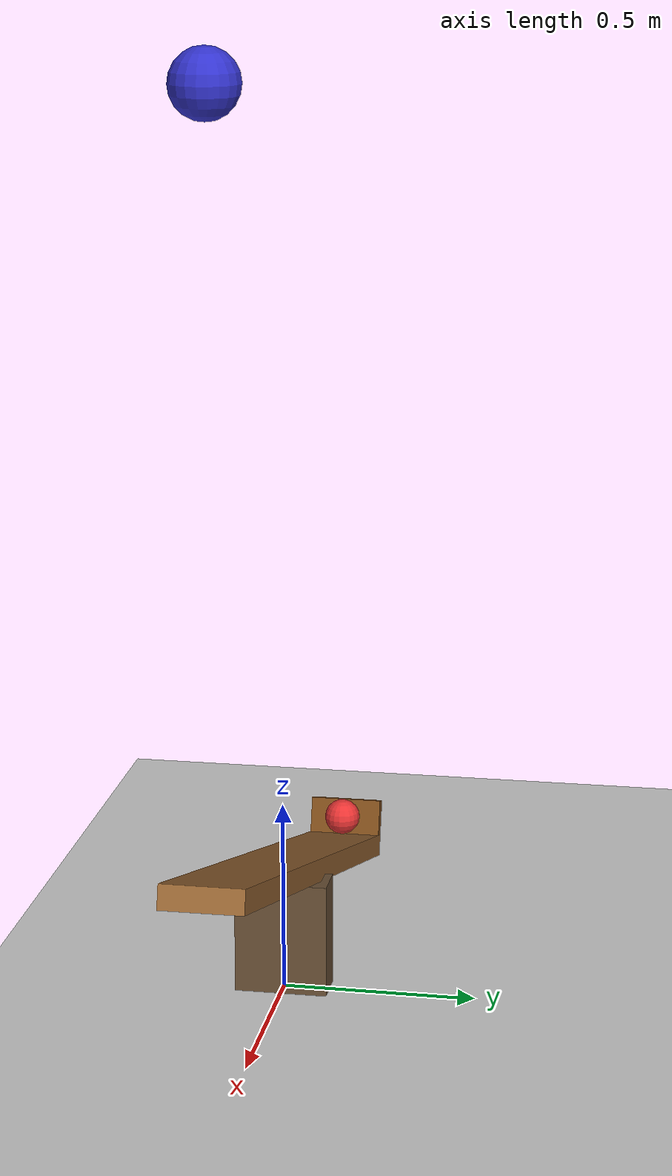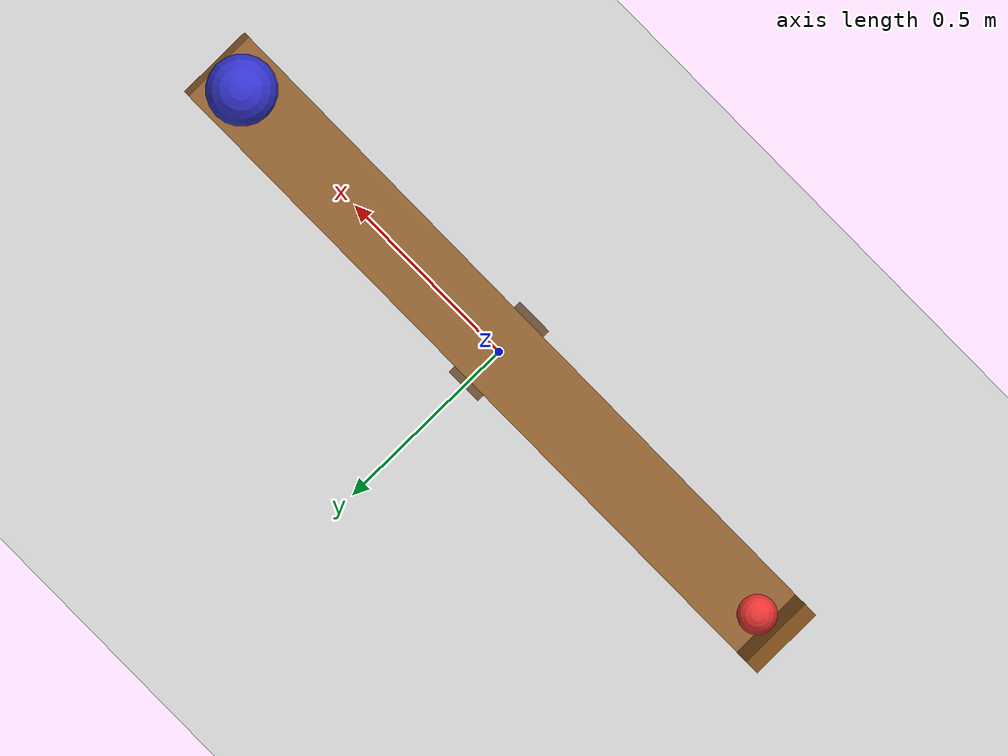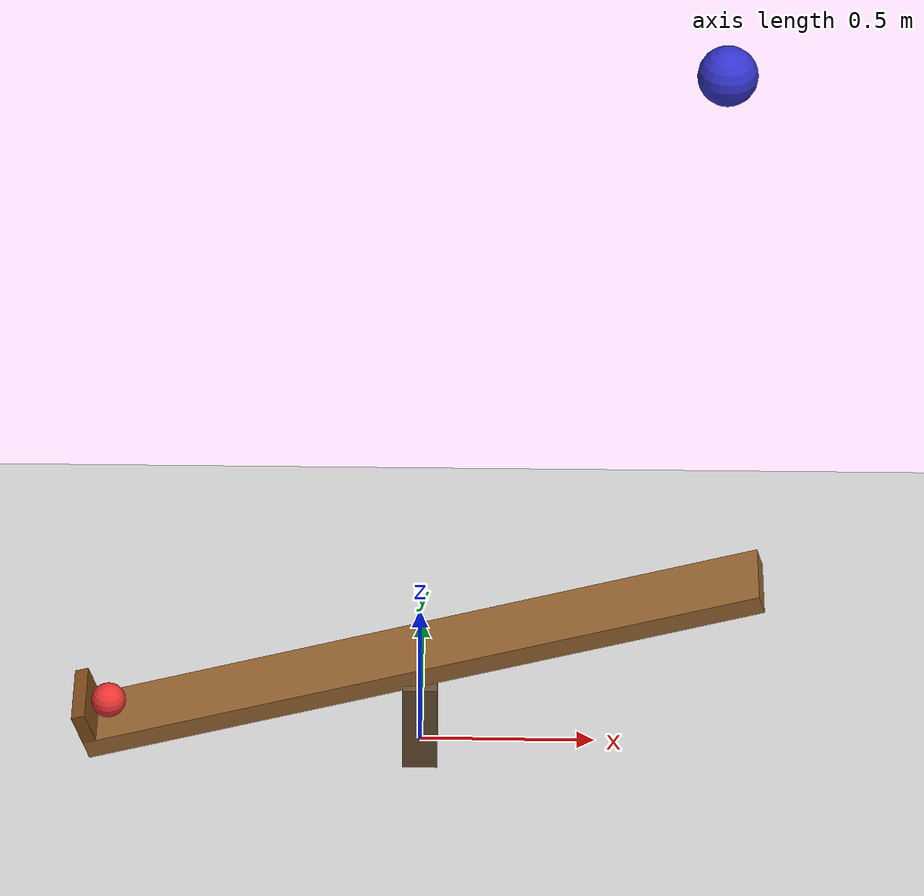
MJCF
<mujoco model="seesaw_catapult">
  <option timestep="0.002" gravity="0 0 -9.81"/>
  <worldbody>
    <light name="sun" pos="0 0 4" dir="0 0 -1"/>
    <geom name="floor" type="plane" size="5 5 0.1" rgba="0.8 0.8 0.8 1"/>
    <geom name="fulcrum" type="box" pos="0 0 0.15" size="0.05 0.12 0.15" contype="0" conaffinity="0" rgba="0.4 0.3 0.2 1"/>
    <body name="seesaw" pos="0 0 0.33" quat="0.98877 0 -0.14944 0">
      <joint name="pivot" type="hinge" axis="0 1 0" limited="true" range="0 0.6" damping="0.01"/>
      <geom name="plank" type="box" size="1.0 0.1 0.03" mass="0.3" solref="0.005 1" friction="1 0.01 0.001" rgba="0.6 0.4 0.2 1"/>
      <geom name="seesaw_lip" type="box" pos="-0.98 0 0.08" size="0.02 0.1 0.05" mass="0.02" solref="0.005 1" rgba="0.5 0.3 0.1 1"/>
    </body>
    <body name="weight" pos="0.80 0 2.4">
      <freejoint/>
      <geom name="weight" type="sphere" size="0.08" mass="1.0" solref="0.005 1" rgba="0.2 0.2 0.8 1"/>
    </body>
    <body name="ball" pos="-0.893 0 0.14">
      <freejoint/>
      <geom name="ball" type="sphere" size="0.05" mass="0.1" solref="0.005 1" friction="1 0.01 0.001" rgba="0.9 0.2 0.2 1"/>
    </body>
  </worldbody>
</mujoco>
